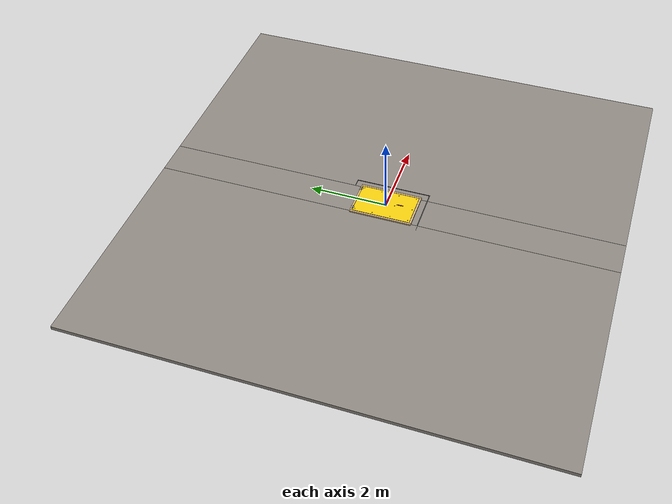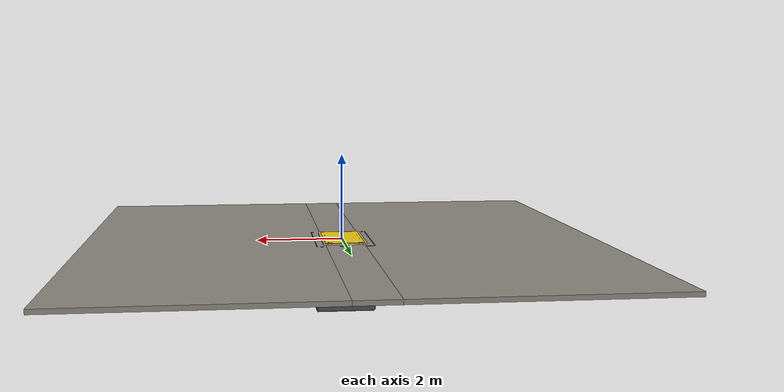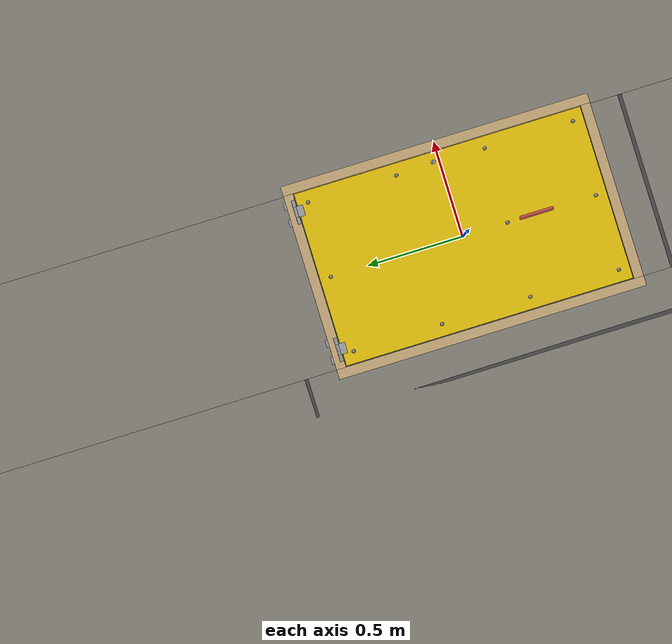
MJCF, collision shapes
<?xml version="1.0" ?>
<mujoco model="db0976_hatch_floor_full">
  <compiler angle="radian" meshdir="../../hardware" texturedir="../../textures" autolimits="true" inertiafromgeom="false"/>
  <option timestep="0.002" integrator="implicitfast" cone="elliptic" impratio="10" noslip_iterations="3">
    <flag multiccd="enable"/>
  </option>
  <size memory="16M"/>
  <default>
    <geom condim="4" solref="0.005 1" solimp="0.95 0.99 0.001"/>
    <joint solreflimit="0.005 1" solimplimit="0.95 0.99 0.001"/>
    <tendon solreflimit="0.005 1"/>
    <equality solref="0.002 1"/>
  </default>
  <visual>
    <headlight ambient="0.4 0.4 0.4" diffuse="0.7 0.7 0.7" specular="0.2 0.2 0.2"/>
    <quality shadowsize="4096"/>
    <map znear="0.01" zfar="60"/>
  </visual>
  <asset>
    <mesh name="pull_1e5d69a91a" file="pull_1e5d69a91a.obj"/>
    <material name="mat_floor" rgba="0.55 0.53 0.5 1" specular="0.2" shininess="0.15" reflectance="0"/>
    <material name="mat_wall" rgba="0.78 0.76 0.7 1" specular="0.2" shininess="0.1" reflectance="0"/>
    <material name="mat_pit" rgba="0.3 0.3 0.3 1" specular="0.2" shininess="0.1" reflectance="0"/>
    <material name="mat_frame" rgba="0.82 0.7 0.5 1" specular="0.2" shininess="0.45" reflectance="0"/>
    <material name="mat_leaf" rgba="0.95 0.8 0.05 1" specular="0.23" shininess="0.51" reflectance="0.02"/>
    <material name="mat_hinge" rgba="0.65 0.66 0.68 1" specular="0.74" shininess="0.5" reflectance="0.36"/>
    <material name="mat_rivet" rgba="0.55 0.56 0.58 1" specular="0.8" shininess="0.55" reflectance="0.4"/>
    <material name="mat_op_stainless" rgba="0.75 0.76 0.77 1" specular="0.8" shininess="0.65" reflectance="0.4"/>
    <material name="mat_strut" rgba="0.75 0.76 0.77 1" specular="0.8" shininess="0.65" reflectance="0.4"/>
    <texture name="skybox" type="skybox" builtin="gradient" rgb1="0.6 0.7 0.85" rgb2="0.9 0.92 0.95" width="256" height="256"/>
  </asset>
  <worldbody>
    <light name="sun" pos="1.5 -2.5 4" dir="-0.3 0.5 -0.8" directional="true" diffuse="0.8 0.8 0.8" specular="0.3 0.3 0.3" castshadow="true"/>
    <light name="fill" pos="-1.5 2.5 3" dir="0.3 -0.5 -0.7" directional="true" diffuse="0.35 0.35 0.4" castshadow="false"/>
    <camera name="robot_view" pos="0 -2.040625 1.326375" xyaxes="1 0 0 0 0.26963 0.962964" fovy="52"/>
    <camera name="far_view" pos="0 2.040625 1.326375" xyaxes="-1 0 0 0 -0.26963 0.962964" fovy="52"/>
    <camera name="iso" pos="1.550875 -1.714125 1.652875" xyaxes="0.741536 0.670913 0 -0.242917 0.268487 0.932151" fovy="46"/>
    <camera name="detail_handle" pos="0.35 0.268 -0.2425" xyaxes="0.843661 0.536875 0 -0.426006 0.669439 0.608581" fovy="38"/>
    <geom name="floor_a" type="box" size="2.7725 6 0.05" pos="-3.2275 0 -0.05" material="mat_floor" group="0" contype="1" conaffinity="1" friction="0.6 0.005 0.0001" density="2400"/>
    <geom name="floor_b" type="box" size="2.7725 6 0.05" pos="3.2275 0 -0.05" material="mat_floor" group="0" contype="1" conaffinity="1" friction="0.6 0.005 0.0001" density="2400"/>
    <geom name="floor_c" type="box" size="0.455 2.6225 0.05" pos="0 -3.3775 -0.05" material="mat_floor" group="0" contype="1" conaffinity="1" friction="0.6 0.005 0.0001" density="2400"/>
    <geom name="floor_d" type="box" size="0.455 2.6225 0.05" pos="0 3.3775 -0.05" material="mat_floor" group="0" contype="1" conaffinity="1" friction="0.6 0.005 0.0001" density="2400"/>
    <geom name="pit_floor" type="box" size="0.655 0.955 0.02" pos="0 0 -1.5" material="mat_pit" group="0" contype="1" conaffinity="1" friction="0.6 0.005 0.0001" density="2400"/>
    <geom name="pit_wall_l" type="box" size="0.01 0.975 0.75" pos="-0.665 0 -0.75" material="mat_pit" group="0" contype="1" conaffinity="1" friction="0.6 0.005 0.0001" density="2400"/>
    <geom name="pit_wall_r" type="box" size="0.01 0.975 0.75" pos="0.665 0 -0.75" material="mat_pit" group="0" contype="1" conaffinity="1" friction="0.6 0.005 0.0001" density="2400"/>
    <geom name="pit_wall_n" type="box" size="0.655 0.01 0.75" pos="0 -0.965 -0.75" material="mat_pit" group="0" contype="1" conaffinity="1" friction="0.6 0.005 0.0001" density="2400"/>
    <geom name="pit_wall_f" type="box" size="0.655 0.01 0.75" pos="0 0.965 -0.75" material="mat_pit" group="0" contype="1" conaffinity="1" friction="0.6 0.005 0.0001" density="2400"/>
    <geom name="curb_l" type="box" size="0.025 0.805 0.02" pos="-0.48 0 0.02" material="mat_frame" group="0" contype="1" conaffinity="1" friction="0.6 0.005 0.0001" density="7850"/>
    <geom name="curb_r" type="box" size="0.025 0.805 0.02" pos="0.48 0 0.02" material="mat_frame" group="0" contype="1" conaffinity="1" friction="0.6 0.005 0.0001" density="7850"/>
    <geom name="curb_n" type="box" size="0.455 0.025 0.02" pos="0 -0.78 0.02" material="mat_frame" group="0" contype="1" conaffinity="1" friction="0.6 0.005 0.0001" density="7850"/>
    <geom name="curb_f" type="box" size="0.455 0.025 0.02" pos="0 0.78 0.02" material="mat_frame" group="0" contype="1" conaffinity="1" friction="0.6 0.005 0.0001" density="7850"/>
    <geom name="hatch_hinge_0_curb_n" type="cylinder" size="0.01 0.018" pos="-0.404 0.765 0.04" quat="0.707107 0 0.707107 0" material="mat_hinge" group="1" contype="0" conaffinity="0" density="7850"/>
    <geom name="hatch_hinge_0_curb_strap_n" type="box" size="0.018 0.032 0.005" pos="-0.404 0.785 0.03" material="mat_hinge" group="1" contype="0" conaffinity="0" density="7850"/>
    <geom name="hatch_hinge_0_curb_p" type="cylinder" size="0.01 0.018" pos="-0.316 0.765 0.04" quat="0.707107 0 0.707107 0" material="mat_hinge" group="1" contype="0" conaffinity="0" density="7850"/>
    <geom name="hatch_hinge_0_curb_strap_p" type="box" size="0.018 0.032 0.005" pos="-0.316 0.785 0.03" material="mat_hinge" group="1" contype="0" conaffinity="0" density="7850"/>
    <geom name="hatch_hinge_1_curb_n" type="cylinder" size="0.01 0.018" pos="0.316 0.765 0.04" quat="0.707107 0 0.707107 0" material="mat_hinge" group="1" contype="0" conaffinity="0" density="7850"/>
    <geom name="hatch_hinge_1_curb_strap_n" type="box" size="0.018 0.032 0.005" pos="0.316 0.785 0.03" material="mat_hinge" group="1" contype="0" conaffinity="0" density="7850"/>
    <geom name="hatch_hinge_1_curb_p" type="cylinder" size="0.01 0.018" pos="0.404 0.765 0.04" quat="0.707107 0 0.707107 0" material="mat_hinge" group="1" contype="0" conaffinity="0" density="7850"/>
    <geom name="hatch_hinge_1_curb_strap_p" type="box" size="0.018 0.032 0.005" pos="0.404 0.785 0.03" material="mat_hinge" group="1" contype="0" conaffinity="0" density="7850"/>
    <site name="approach_point" pos="0 -1.5 0" quat="1 0 0 0" size="0.05" rgba="0.2 0.9 0.2 0.5" group="4"/>
    <site name="goal_point" pos="0 0 -1" quat="1 0 0 0" size="0.05" rgba="0.2 0.9 0.2 0.5" group="4"/>
    <site name="door_plane_center" pos="0 0 0" quat="1 0 0 0" size="0.02" rgba="0.2 0.9 0.2 0.5" group="4"/>
    <body name="hatch" pos="0 0.755 0.04">
      <inertial pos="0.006022 -0.749135 -0.002047" mass="65.835" quat="0.709684 0.003686 0.005467 0.704489" diaginertia="4.580425073 12.449385763 16.966750005"/>
      <joint name="hatch_hinge" type="hinge" axis="-1 0 0" pos="0 0.01 0" limited="true" range="0 1.308997" damping="30.677737" frictionloss="1.208602" stiffness="19.5" springref="-3.333333" armature="0.02"/>
      <geom name="hatch_slab" type="box" size="0.45 0.751 0.003" pos="0 -0.755 0" material="mat_leaf" group="0" contype="1" conaffinity="1" friction="0.6 0.005 0.0001" density="1"/>
      <geom name="hatch_hinge_0" type="cylinder" size="0.01 0.028" pos="-0.36 0.01 0" quat="0.707107 0 0.707107 0" material="mat_hinge" group="1" contype="0" conaffinity="0" density="7850"/>
      <geom name="hatch_hinge_0_strap" type="box" size="0.028 0.023 0.003" pos="-0.36 -0.007 0.005" material="mat_hinge" group="1" contype="0" conaffinity="0" density="7850"/>
      <geom name="hatch_hinge_1" type="cylinder" size="0.01 0.028" pos="0.36 0.01 0" quat="0.707107 0 0.707107 0" material="mat_hinge" group="1" contype="0" conaffinity="0" density="7850"/>
      <geom name="hatch_hinge_1_strap" type="box" size="0.028 0.023 0.003" pos="0.36 -0.007 0.005" material="mat_hinge" group="1" contype="0" conaffinity="0" density="7850"/>
      <geom name="rivet_0_0" type="sphere" size="0.01" pos="-0.39 -0.06 0.003" material="mat_rivet" group="2" contype="0" conaffinity="0" density="7850"/>
      <geom name="rivet_0_1" type="sphere" size="0.01" pos="0 -0.06 0.003" material="mat_rivet" group="2" contype="0" conaffinity="0" density="7850"/>
      <geom name="rivet_0_2" type="sphere" size="0.01" pos="0.39 -0.06 0.003" material="mat_rivet" group="2" contype="0" conaffinity="0" density="7850"/>
      <geom name="rivet_1_0" type="sphere" size="0.01" pos="-0.39 -0.523333 0.003" material="mat_rivet" group="2" contype="0" conaffinity="0" density="7850"/>
      <geom name="rivet_1_1" type="sphere" size="0.01" pos="0 -0.523333 0.003" material="mat_rivet" group="2" contype="0" conaffinity="0" density="7850"/>
      <geom name="rivet_1_2" type="sphere" size="0.01" pos="0.39 -0.523333 0.003" material="mat_rivet" group="2" contype="0" conaffinity="0" density="7850"/>
      <geom name="rivet_2_0" type="sphere" size="0.01" pos="-0.39 -0.986667 0.003" material="mat_rivet" group="2" contype="0" conaffinity="0" density="7850"/>
      <geom name="rivet_2_1" type="sphere" size="0.01" pos="0 -0.986667 0.003" material="mat_rivet" group="2" contype="0" conaffinity="0" density="7850"/>
      <geom name="rivet_2_2" type="sphere" size="0.01" pos="0.39 -0.986667 0.003" material="mat_rivet" group="2" contype="0" conaffinity="0" density="7850"/>
      <geom name="rivet_3_0" type="sphere" size="0.01" pos="-0.39 -1.45 0.003" material="mat_rivet" group="2" contype="0" conaffinity="0" density="7850"/>
      <geom name="rivet_3_1" type="sphere" size="0.01" pos="0 -1.45 0.003" material="mat_rivet" group="2" contype="0" conaffinity="0" density="7850"/>
      <geom name="rivet_3_2" type="sphere" size="0.01" pos="0.39 -1.45 0.003" material="mat_rivet" group="2" contype="0" conaffinity="0" density="7850"/>
      <geom name="hatch_pull_p" type="mesh" mesh="pull_1e5d69a91a" pos="0 -1.1325 0.006" quat="0.707107 -0.707107 0 0" material="mat_op_stainless" group="1" contype="0" conaffinity="0" density="3000"/>
      <geom name="hatch_pull_col_p" type="capsule" size="0.0095 0.08" pos="0 -1.1325 0.066" quat="0.707107 0.707107 0 0" material="mat_op_stainless" group="3" contype="1" conaffinity="1" rgba="0.8 0.3 0.3 0.25" friction="0.7 0.01 0.0001" density="3000"/>
      <geom name="gas_strut" type="cylinder" size="0.01 0.2" pos="0.4 -0.604 -0.15" quat="0.316228 -0.948683 0 0" material="mat_strut" group="1" contype="0" conaffinity="0" density="7900"/>
      <site name="hatch_pull_grip_p" pos="0 0.063 -1.1325" quat="1 0 0 0" size="0.012" rgba="0.2 0.9 0.2 0.5" group="4"/>
    </body>
  </worldbody>
  <sensor>
    <jointpos name="hatch_hinge_pos" joint="hatch_hinge"/>
    <jointvel name="hatch_hinge_vel" joint="hatch_hinge"/>
  </sensor>
</mujoco>
